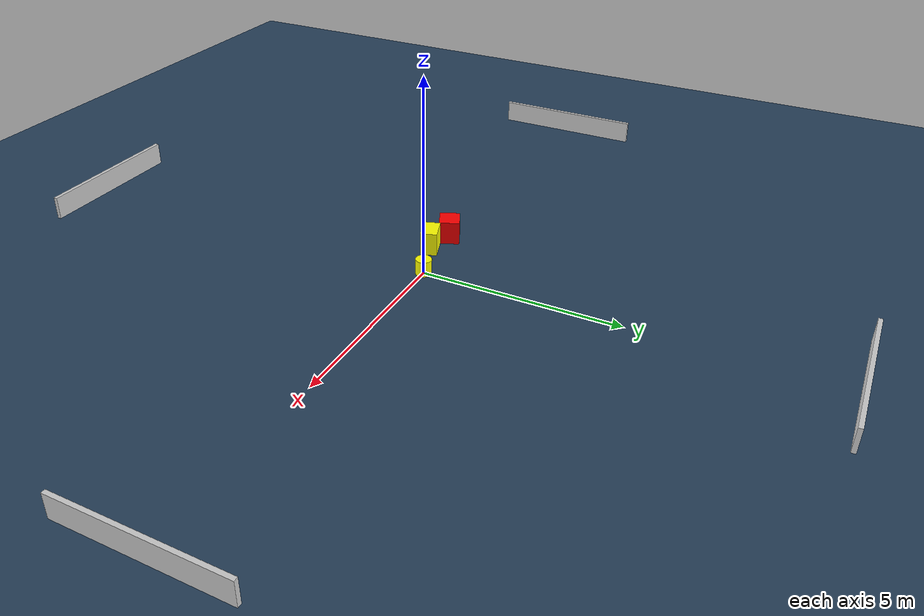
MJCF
<?xml version="1.0" ?>
<mujoco model="generated_environment">
  <option timestep="0.01" integrator="RK4" cone="elliptic"/>
  <default>
    <geom density="1"/>
  </default>
  <asset>
    <texture builtin="gradient" height="3072" name="skybox" rgb1="0.3 0.5 0.7" rgb2="0 0 0" type="skybox" width="512"/>
    <texture builtin="checker" height="300" name="groundplane" rgb1="0.2 0.3 0.4" rgb2="0.1 0.2 0.3" type="2d" width="300"/>
    <material name="groundplane" reflectance="0.2" texrepeat="5 5" texture="groundplane"/>
  </asset>
  <worldbody>
    <light dir="0 0 -1" directional="true" pos="0 0 1.5"/>
    <geom condim="3" friction="0.5 0.005 0.001" material="groundplane" name="floor" pos="0 0 0" size="0 0 0.05" type="plane"/>
    <body name="walls">
      <geom name="wall_1" condim="4" pos="-10.0 0.0 0.3" rgba="0.800000011920929 0.800000011920929 0.800000011920929 1.0" size="0.05 2.0 0.3" type="box"/>
      <geom name="wall_2" condim="4" pos="10.0 0.0 0.3" rgba="0.800000011920929 0.800000011920929 0.800000011920929 1.0" size="0.05 2.0 0.3" type="box"/>
      <geom name="wall_3" condim="4" pos="0.0 -10.0 0.3" rgba="0.800000011920929 0.800000011920929 0.800000011920929 1.0" size="2.0 0.05 0.3" type="box"/>
      <geom name="wall_4" condim="4" pos="0.0 10.0 0.3" rgba="0.800000011920929 0.800000011920929 0.800000011920929 1.0" size="2.0 0.05 0.3" type="box"/>
    </body>
    <body name="robot">
      <joint name="joint_x" type="slide" pos="0 0 0" axis="1 0 0"/>
      <joint name="joint_y" type="slide" pos="0 0 0" axis="0 1 0"/>
      <geom name="robot" type="cylinder" pos="0.0 0.0 0.2" size="0.2 0.2 0.0" mass="5.0" friction="1.0 0.005 0.0001" condim="4" rgba="1.0 1.0 0.0 1.0"/>
    </body>
    <body name="obstacle_1_movable">
      <geom name="obstacle_1_movable" condim="4" pos="-1.1175870978089255 -0.3905043888888862 0.3" euler="0 0 108.0389199710994" friction="0.0 0.005 0.001" rgba="1.0 1.0 0.0 1.0" size="0.20786861074242244 0.3109106979574312 0.3" type="box" mass="0.1"/>
      <joint type="free"/>
    </body>
    <body name="obstacle_2_static">
      <geom name="obstacle_2_static" condim="4" pos="-1.8259155803529752 -0.200307283248134 0.3" euler="0 0 23.517226771467833" friction="0.0 0.005 0.001" rgba="1.0 0.0 0.0 1.0" size="0.2777807724834654 0.2599833433523799 0.3" type="box"/>
    </body>
  </worldbody>
  <actuator>
    <motor name="actuator_x" joint="joint_x" gear="1" ctrlrange="-1 1"/>
    <motor name="actuator_y" joint="joint_y" gear="1" ctrlrange="-1 1"/>
  </actuator>
</mujoco>
